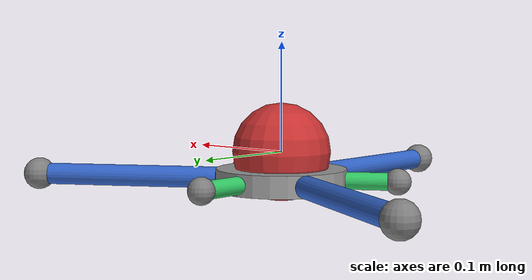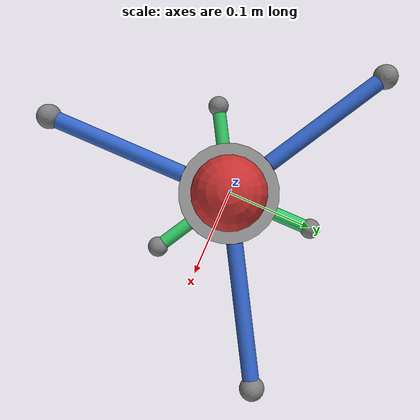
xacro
<?xml version="1.0"?>
<!--
  Delta Robot with Net FT Sensor for Admittance Control Demo

  This URDF extends the base delta_robot.urdf.xacro by adding network FT sensor support
-->
<robot xmlns:xacro="http://www.ros.org/wiki/xacro" name="delta_with_netft">

  <!-- Include the base delta robot URDF -->
  <xacro:include filename="$(find delta_kinematics_controller)/urdf/delta_robot.urdf.xacro"/>

  <!-- Include the net FT sensor macro -->
  <xacro:include filename="$(find net_ft_description)/urdf/net_ft_sensor.ros2_control.xacro"/>

  <!-- Network FT Sensor Parameters -->
  <xacro:arg name="ft_sensor_ip" default="192.168.1.1"/>
  <xacro:arg name="ft_sensor_type" default="ati"/>  <!-- Options: ati, ati_axia, onrobot -->
  <xacro:arg name="ft_rdt_sampling_rate" default="1000"/>  <!-- Hz -->
  <xacro:arg name="ft_filter_rate" default="100"/>  <!-- Hz -->
  <xacro:arg name="ft_use_hardware_biasing" default="true"/>
  <xacro:arg name="use_netft" default="true"/>
  <xacro:arg name="use_fake_hardware" default="true"/>

  <!-- Add end_effector link (for admittance controller and FT sensor mounting) -->
  <link name="end_effector">
    <visual>
      <geometry>
        <cylinder radius="0.03" length="0.01"/>
      </geometry>
      <material name="grey"><color rgba="0.5 0.5 0.5 1.0"/></material>
    </visual>
    <inertial>
      <mass value="0.1"/>
      <inertia ixx="0.001" ixy="0.0" ixz="0.0"
               iyy="0.001" iyz="0.0"
               izz="0.001"/>
    </inertial>
  </link>

  <joint name="ee_to_end_effector" type="fixed">
    <parent link="ee"/>
    <child link="end_effector"/>
    <origin xyz="0 0 0" rpy="0 0 0"/>
  </joint>

  <!-- Add Network FT Sensor (only if use_netft:=true AND NOT using fake hardware) -->
  <xacro:if value="$(arg use_netft)">
    <xacro:unless value="$(arg use_fake_hardware)">
      <xacro:net_ft_sensor_ros2_control
        name="NetFTSensor"
        ip_address="$(arg ft_sensor_ip)"
        sensor_type="$(arg ft_sensor_type)"
        rdt_sampling_rate="$(arg ft_rdt_sampling_rate)"
        internal_filter_rate="$(arg ft_filter_rate)"
        use_hardware_biasing="$(arg ft_use_hardware_biasing)"/>
    </xacro:unless>
  </xacro:if>

</robot>

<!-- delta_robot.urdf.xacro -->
<robot xmlns:xacro="http://www.ros.org/wiki/xacro" name="delta_robot">

  <xacro:property name="delta_e" value="0.045"/>
  <xacro:property name="delta_f" value="0.11812"/>
  <xacro:property name="delta_re" value="0.34"/>
  <xacro:property name="delta_rf" value="0.17438"/>
  <xacro:property name="delta_motor_z_offset" value="-0.025"/>

  <!-- Base link -->
  <link name="base">
    <visual>
      <geometry>
        <cylinder length="0.02" radius="0.06"/>
      </geometry>
  <origin xyz="0 0 ${delta_motor_z_offset}" rpy="0 0 0"/>
      <material name="gray"><color rgba="0.6 0.6 0.6 1.0"/></material>
    </visual>
  </link>

  <!-- Three simple revolute joints and arms for visualization -->
  <xacro:macro name="arm" params="idx x y yaw">
    <!-- Upper arm (connected to motor) -->
    <link name="upper_link_${idx}">
      <visual>
        <geometry>
          <cylinder length="${delta_rf}" radius="0.01"/>
        </geometry>
        <!-- Cylinder rotated to lie horizontally for Z-axis rotation -->
        <origin xyz="${delta_rf/2.0} 0 0" rpy="0 ${pi/2} 0"/>
        <material name="blue"><color rgba="0.2 0.4 0.8 1.0"/></material>
      </visual>
    </link>

    <joint name="joint${idx}" type="revolute">
      <parent link="base"/>
      <child link="upper_link_${idx}"/>
      <origin xyz="${x} ${y} ${delta_motor_z_offset}" rpy="0 0 ${yaw}"/>
      <axis xyz="0 1 0"/>
      <limit effort="10.0" velocity="10.0" lower="-3.1416" upper="3.1416"/>
    </joint>

    <!-- Elbow joint (virtual, for visualization only) -->
    <link name="elbow_${idx}">
      <visual>
        <geometry>
          <sphere radius="0.015"/>
        </geometry>
        <material name="gray"><color rgba="0.5 0.5 0.5 1.0"/></material>
      </visual>
    </link>

    <joint name="elbow_joint_${idx}" type="fixed">
      <parent link="upper_link_${idx}"/>
      <child link="elbow_${idx}"/>
      <origin xyz="${delta_rf} 0 0" rpy="0 0 0"/>
    </joint>

    <!-- Ball joint intermediate link for pitch rotation -->
    <link name="lower_pitch_link_${idx}"/>

    <!-- Ball joint pitch: rotation around Y axis -->
    <joint name="elbow_pitch_${idx}" type="continuous">
      <parent link="elbow_${idx}"/>
      <child link="lower_pitch_link_${idx}"/>
      <origin xyz="0 0 0" rpy="0 0 0"/>
      <axis xyz="0 1 0"/>  <!-- Pitch around Y axis -->
    </joint>

    <!-- Lower arm (forearm, connected to end-effector via ball joint) -->
    <link name="lower_link_${idx}">
      <!-- Physical lower link (no visual) - visual geometry moved to lower_link_vis for controller-driven TF visualization -->
    </link>

    <!-- Visual-only lower arm link (driven by controller TF) -->
    <link name="lower_link_vis_${idx}">
      <visual>
        <geometry>
          <cylinder length="${delta_re}" radius="0.008"/>
        </geometry>
        <!-- cylinder centered at origin, extends along -X (toward EE) -->
        <origin xyz="${-delta_re/2.0} 0 0" rpy="0 ${pi/2} 0"/>
        <material name="green"><color rgba="0.2 0.8 0.4 1.0"/></material>
      </visual>
    </link>

    <!-- Ball joint yaw: rotation around Z axis (after pitch) -->
    <joint name="elbow_yaw_${idx}" type="continuous">
      <parent link="lower_pitch_link_${idx}"/>
      <child link="lower_link_${idx}"/>
      <origin xyz="0 0 0" rpy="0 0 0"/>
      <axis xyz="0 0 1"/>  <!-- Yaw around Z axis (after pitch rotation) -->
    </joint>

    <!-- Visual-only lower link fixed to the pitch link; its transform will be published by the controller -->
    <joint name="lower_link_vis_joint_${idx}" type="fixed">
      <parent link="lower_pitch_link_${idx}"/>
      <child link="lower_link_vis_${idx}"/>
      <origin xyz="0 0 0" rpy="0 0 0"/>
    </joint>

    <!-- End point of lower arm (where it attaches to EE platform) -->
    <link name="lower_arm_end_${idx}">
      <visual>
        <geometry>
          <sphere radius="0.012"/>
        </geometry>
        <material name="gray"><color rgba="0.5 0.5 0.5 1.0"/></material>
      </visual>
    </link>

    <joint name="lower_arm_end_joint_${idx}" type="fixed">
      <parent link="lower_link_vis_${idx}"/>
      <child link="lower_arm_end_${idx}"/>
      <origin xyz="${-delta_re} 0 0" rpy="0 0 0"/>  <!-- At the end of the lower arm (in -X direction) -->
    </joint>
  </xacro:macro>

  <!-- instantiate three arms at 0, 120, 240 degrees -->
  <!-- positions on base rim at radius 0.06 -->
  <!-- FK convention: arm 1 extends in -Y direction (0°), then 120°, 240° -->
  <!-- Yaw rotates the joint frame so local X-axis points along the arm direction -->
  <xacro:arm idx="1" x="0.0" y="-0.06" yaw="-1.57079632679"/>
  <xacro:arm idx="2" x="0.051961524" y="0.03" yaw="0.52359877559"/>
  <xacro:arm idx="3" x="-0.051961524" y="0.03" yaw="2.61799387799"/>

  <!-- End-effector frame (visual only) -->
  <link name="ee">
    <visual>
      <geometry>
        <sphere radius="${delta_e}"/>
      </geometry>
      <material name="red"><color rgba="0.8 0.2 0.2 1.0"/></material>
    </visual>
  </link>

  <!-- Floating joint allows ee to move freely in 6-DOF
       The controller will publish the actual base→ee transform via TF -->
  <joint name="ee_floating" type="floating">
    <parent link="base"/>
    <child link="ee"/>
  </joint>

  <!-- Visual markers for EE platform attachment points (actual lower arm end positions) -->
  <!-- These should match where the lower_arm_end markers are positioned -->
  <link name="ee_attach_1"/>  <!-- No visual - disabled to reduce clutter -->

  <joint name="ee_attach_joint_1" type="fixed">
    <parent link="ee"/>
    <child link="ee_attach_1"/>
    <origin xyz="0 0 0" rpy="0 0 0"/>
  </joint>

  <link name="ee_attach_2"/>  <!-- No visual - disabled -->

  <joint name="ee_attach_joint_2" type="fixed">
    <parent link="ee"/>
    <child link="ee_attach_2"/>
    <origin xyz="0 0 0" rpy="0 0 0"/>
  </joint>

  <link name="ee_attach_3"/>  <!-- No visual - disabled -->

  <joint name="ee_attach_joint_3" type="fixed">
    <parent link="ee"/>
    <child link="ee_attach_3"/>
    <origin xyz="0 0 0" rpy="0 0 0"/>
    <origin xyz="${-delta_e * 0.866025404} ${-delta_e * 0.5} 0" rpy="0 0 0"/>  <!-- Arm 3 at 240° -->
  </joint>

  <ros2_control name="MockHardwareSystem" type="system">
    <hardware>
      <plugin>mock_components/GenericSystem</plugin>
      <param name="calculate_dynamics">false</param>
      <param name="position_state_following_offset">0.0</param>
      <param name="mock_sensor_commands">false</param>
    </hardware>

    <joint name="joint1">
      <command_interface name="position"/>
      <state_interface name="position">
        <param name="initial_value">0.0</param>
      </state_interface>
      <state_interface name="velocity"/>
    </joint>

    <joint name="joint2">
      <command_interface name="position"/>
      <state_interface name="position">
        <param name="initial_value">0.0</param>
      </state_interface>
      <state_interface name="velocity"/>
    </joint>

    <joint name="joint3">
      <command_interface name="position"/>
      <state_interface name="position">
        <param name="initial_value">0.0</param>
      </state_interface>
      <state_interface name="velocity"/>
    </joint>

    <!-- Fake Force-Torque Sensor for Admittance Control -->
    <sensor name="tcp_fts_sensor">
      <state_interface name="force.x"/>
      <state_interface name="force.y"/>
      <state_interface name="force.z"/>
      <state_interface name="torque.x"/>
      <state_interface name="torque.y"/>
      <state_interface name="torque.z"/>
      <param name="frame_id">end_effector</param>
    </sensor>

  </ros2_control>

</robot>
